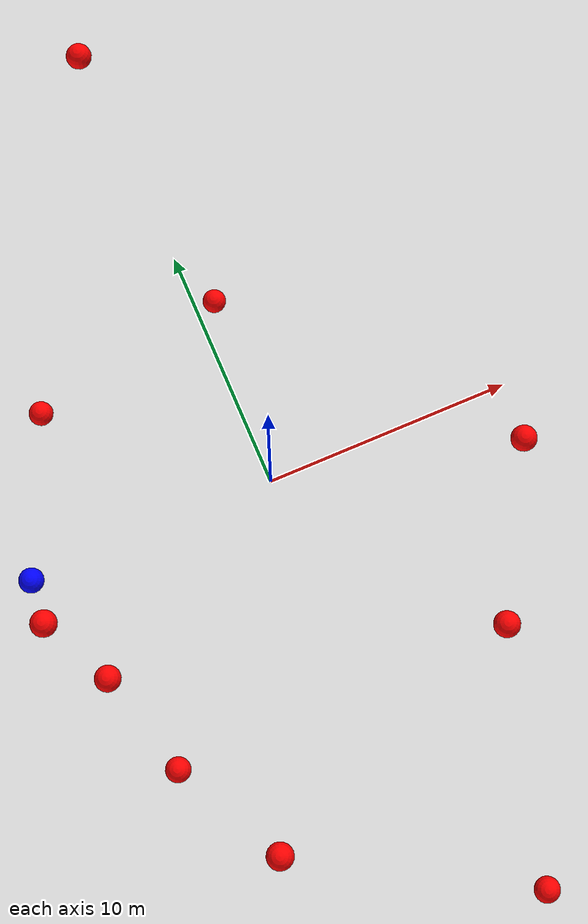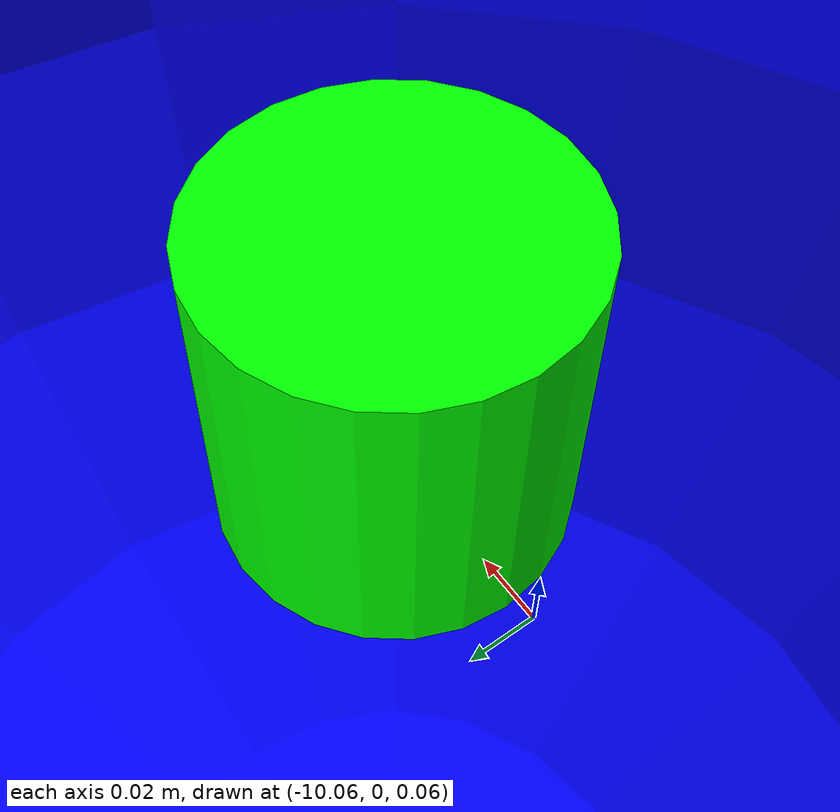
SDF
<?xml version="1.0" ?>
<sdf version="1.8">
    <world name="3d_world">
        <physics name="1ms" type="ode">
            <max_step_size>0.001</max_step_size>
            <real_time_factor>1.0</real_time_factor>
            <real_time_update_rate>1000.0</real_time_update_rate>
        </physics>
        <gravity>0 0 0</gravity>

        <plugin
            filename="gz-sim-physics-system"
            name="gz::sim::v8::systems::Physics">
        </plugin>
        <plugin
            filename="libignition-gazebo-user-commands-system.so"
            name="ignition::gazebo::systems::UserCommands">
        </plugin>
        <plugin
            filename="gz-sim-scene-broadcaster-system"
            name="gz::sim::systems::SceneBroadcaster">
        </plugin>
        <plugin
            filename="gz-sim-sensors-system"
            name="gz::sim::systems::Sensors">
            <render_engine>ogre2</render_engine>
        </plugin>

        <light type="directional" name="sun">
            <cast_shadows>true</cast_shadows>
            <pose>0 0 10 0 0 0</pose>
            <diffuse>0.8 0.8 0.8 1</diffuse>
            <specular>0.2 0.2 0.2 1</specular>
            <attenuation>
                <range>1000</range>
                <constant>0.9</constant>
                <linear>0.01</linear>
                <quadratic>0.001</quadratic>
            </attenuation>
            <direction>-0.5 0.1 -0.9</direction>
        </light>

        <!-- AGENTE -->
        <model name='agente' canonical_link='chassis'>
            <pose relative_to='world'>-10.0 0 0.0 0 0 0</pose>
            <link name='chassis'>
                <pose relative_to='__model__'>0.0 0 0.0 0 0 0</pose>
                <inertial>
                    <mass>1.14395</mass>
                    <inertia>
                        <ixx>0.095329</ixx>
                        <ixy>0</ixy>
                        <ixz>0</ixz>
                        <iyy>0.381317</iyy>
                        <iyz>0</iyz>
                        <izz>0.476646</izz>
                    </inertia>
                </inertial>
                <visual name='visual'>
                    <geometry>
                        <sphere>
                            <radius>0.5</radius>
                        </sphere>
                    </geometry>
                    <material>
                        <ambient>0.0 0.0 1.0 1</ambient>
                        <diffuse>0.0 0.0 1.0 1</diffuse>
                        <specular>0.0 0.0 1.0 1</specular>
                    </material>
                </visual>
                <collision name='collision'>
                    <geometry>
                        <sphere>
                            <radius>0.5</radius>
                        </sphere>
                    </geometry>
                </collision>
                <enable_gravity>false</enable_gravity>
            </link>

            <link name='lidar_link'>
                <pose relative_to='chassis'>0.0 0 0.1 0 0 0</pose>
                <inertial>
                    <mass>0.1</mass>
                    <inertia>
                        <ixx>0.000166667</ixx>
                        <iyy>0.000166667</iyy>
                        <izz>0.000166667</izz>
                    </inertia>
                </inertial>
                <collision name='collision'>
                    <geometry>
                        <cylinder>
                            <radius>0.05</radius>
                            <length>0.1</length>
                        </cylinder>
                    </geometry>
                </collision>
                <visual name='visual'>
                    <geometry>
                        <cylinder>
                            <radius>0.05</radius>
                            <length>0.1</length>
                        </cylinder>
                    </geometry>
                    <material>
                        <ambient>0.0 1.0 0.0 1</ambient>
                        <diffuse>0.0 1.0 0.0 1</diffuse>
                        <specular>0.0 1.0 0.0 1</specular>
                    </material>
                </visual>
                <sensor name="lidar" type="gpu_lidar">
                    <topic>scan</topic>
                    <update_rate>10</update_rate>
                    <lidar>
                        <scan>
                            <horizontal>
                                <samples>5000</samples>
                                <resolution>1</resolution>
                                <min_angle>-3.14159</min_angle>
                                <max_angle>3.14159</max_angle>
                            </horizontal>
                        </scan>
                        <range>
                            <min>0.1</min>
                            <max>10.0</max>
                            <resolution>0.01</resolution>
                        </range>
                    </lidar>
                    <visualize>true</visualize>
                    <always_on>true</always_on>
                    <update_rate>10</update_rate>
                    <pose_frame>lidar</pose_frame>
                </sensor>
                <enable_gravity>false</enable_gravity>
            </link>

            <joint name="lidar_joint" type="fixed">
                <parent>chassis</parent>
                <child>lidar_link</child>
            </joint>

            <plugin
                filename="ignition-gazebo-joint-state-publisher-system"
                name="ignition::gazebo::systems::JointStatePublisher">
            </plugin>
            <plugin
                filename="ignition-gazebo-odometry-publisher-system"
                name="ignition::gazebo::systems::OdometryPublisher">
                <dimensions>3</dimensions>
            </plugin>
            <plugin
                filename="ignition-gazebo-velocity-control-system"
                name="ignition::gazebo::systems::VelocityControl">
                <initial_linear>0.0 0 0</initial_linear>
                <initial_angular>0 0 0.0</initial_angular>
            </plugin>
            <plugin
                filename="libignition-gazebo-pose-publisher-system.so"
                name="ignition::gazebo::systems::PosePublisher">
                <topic>/agente/pose</topic>
                <frame_id>agente</frame_id>
                <update_rate>30</update_rate>
            </plugin>
        </model>

        <!-- OBSTACLE 1 -->
        <model name='obstacle_1' canonical_link='obstacle'>
            <static>false</static>
            <pose relative_to='world'>-7.52 -8.80 -0.69 0 0 0</pose>
            <link name='obstacle'>
                <pose relative_to='__model__'>0.0 0 0.0 0 0 0</pose>
                <visual name='visual'>
                    <geometry>
                        <sphere>
                            <radius>0.50</radius>
                        </sphere>
                    </geometry>
                    <material>
                        <ambient>1.0 0.0 0.0 1</ambient>
                        <diffuse>1.0 0.0 0.0 1</diffuse>
                        <specular>1.0 0.0 0.0 1</specular>
                    </material>
                </visual>
                <collision name='collision'>
                    <geometry>
                        <sphere>
                            <radius>0.50</radius>
                        </sphere>
                    </geometry>
                </collision>
                <enable_gravity>false</enable_gravity>
            </link>

            <plugin
                filename="ignition-gazebo-velocity-control-system"
                name="ignition::gazebo::systems::VelocityControl">
                <initial_linear>0.59 1.90 0.15</initial_linear>
                <initial_angular>0 0 0</initial_angular>
            </plugin>

            <plugin
                filename="ignition-gazebo-odometry-publisher-system"
                name="ignition::gazebo::systems::OdometryPublisher">
                <dimensions>3</dimensions>
            </plugin>
        </model>

        <!-- OBSTACLE 2 -->
        <model name='obstacle_2' canonical_link='obstacle'>
            <static>false</static>
            <pose relative_to='world'>9.04 -2.86 3.34 0 0 0</pose>
            <link name='obstacle'>
                <pose relative_to='__model__'>0.0 0 0.0 0 0 0</pose>
                <visual name='visual'>
                    <geometry>
                        <sphere>
                            <radius>0.50</radius>
                        </sphere>
                    </geometry>
                    <material>
                        <ambient>1.0 0.0 0.0 1</ambient>
                        <diffuse>1.0 0.0 0.0 1</diffuse>
                        <specular>1.0 0.0 0.0 1</specular>
                    </material>
                </visual>
                <collision name='collision'>
                    <geometry>
                        <sphere>
                            <radius>0.50</radius>
                        </sphere>
                    </geometry>
                </collision>
                <enable_gravity>false</enable_gravity>
            </link>

            <plugin
                filename="ignition-gazebo-velocity-control-system"
                name="ignition::gazebo::systems::VelocityControl">
                <initial_linear>-0.30 0.42 -0.49</initial_linear>
                <initial_angular>0 0 0</initial_angular>
            </plugin>

            <plugin
                filename="ignition-gazebo-odometry-publisher-system"
                name="ignition::gazebo::systems::OdometryPublisher">
                <dimensions>3</dimensions>
            </plugin>
        </model>

        <!-- OBSTACLE 3 -->
        <model name='obstacle_3' canonical_link='obstacle'>
            <static>false</static>
            <pose relative_to='world'>-9.74 -2.56 4.60 0 0 0</pose>
            <link name='obstacle'>
                <pose relative_to='__model__'>0.0 0 0.0 0 0 0</pose>
                <visual name='visual'>
                    <geometry>
                        <sphere>
                            <radius>0.50</radius>
                        </sphere>
                    </geometry>
                    <material>
                        <ambient>1.0 0.0 0.0 1</ambient>
                        <diffuse>1.0 0.0 0.0 1</diffuse>
                        <specular>1.0 0.0 0.0 1</specular>
                    </material>
                </visual>
                <collision name='collision'>
                    <geometry>
                        <sphere>
                            <radius>0.50</radius>
                        </sphere>
                    </geometry>
                </collision>
                <enable_gravity>false</enable_gravity>
            </link>

            <plugin
                filename="ignition-gazebo-velocity-control-system"
                name="ignition::gazebo::systems::VelocityControl">
                <initial_linear>1.79 0.44 -0.79</initial_linear>
                <initial_angular>0 0 0</initial_angular>
            </plugin>

            <plugin
                filename="ignition-gazebo-odometry-publisher-system"
                name="ignition::gazebo::systems::OdometryPublisher">
                <dimensions>3</dimensions>
            </plugin>
        </model>

        <!-- OBSTACLE 4 -->
        <model name='obstacle_4' canonical_link='obstacle'>
            <static>false</static>
            <pose relative_to='world'>3.43 -18.20 -0.34 0 0 0</pose>
            <link name='obstacle'>
                <pose relative_to='__model__'>0.0 0 0.0 0 0 0</pose>
                <visual name='visual'>
                    <geometry>
                        <sphere>
                            <radius>0.50</radius>
                        </sphere>
                    </geometry>
                    <material>
                        <ambient>1.0 0.0 0.0 1</ambient>
                        <diffuse>1.0 0.0 0.0 1</diffuse>
                        <specular>1.0 0.0 0.0 1</specular>
                    </material>
                </visual>
                <collision name='collision'>
                    <geometry>
                        <sphere>
                            <radius>0.50</radius>
                        </sphere>
                    </geometry>
                </collision>
                <enable_gravity>false</enable_gravity>
            </link>

            <plugin
                filename="ignition-gazebo-velocity-control-system"
                name="ignition::gazebo::systems::VelocityControl">
                <initial_linear>-0.04 2.00 0.04</initial_linear>
                <initial_angular>0 0 0</initial_angular>
            </plugin>

            <plugin
                filename="ignition-gazebo-odometry-publisher-system"
                name="ignition::gazebo::systems::OdometryPublisher">
                <dimensions>3</dimensions>
            </plugin>
        </model>

        <!-- OBSTACLE 5 -->
        <model name='obstacle_5' canonical_link='obstacle'>
            <static>false</static>
            <pose relative_to='world'>-7.36 6.70 -2.00 0 0 0</pose>
            <link name='obstacle'>
                <pose relative_to='__model__'>0.0 0 0.0 0 0 0</pose>
                <visual name='visual'>
                    <geometry>
                        <sphere>
                            <radius>0.50</radius>
                        </sphere>
                    </geometry>
                    <material>
                        <ambient>1.0 0.0 0.0 1</ambient>
                        <diffuse>1.0 0.0 0.0 1</diffuse>
                        <specular>1.0 0.0 0.0 1</specular>
                    </material>
                </visual>
                <collision name='collision'>
                    <geometry>
                        <sphere>
                            <radius>0.50</radius>
                        </sphere>
                    </geometry>
                </collision>
                <enable_gravity>false</enable_gravity>
            </link>

            <plugin
                filename="ignition-gazebo-velocity-control-system"
                name="ignition::gazebo::systems::VelocityControl">
                <initial_linear>1.69 -1.03 0.31</initial_linear>
                <initial_angular>0 0 0</initial_angular>
            </plugin>

            <plugin
                filename="ignition-gazebo-odometry-publisher-system"
                name="ignition::gazebo::systems::OdometryPublisher">
                <dimensions>3</dimensions>
            </plugin>
        </model>

        <!-- OBSTACLE 6 -->
        <model name='obstacle_6' canonical_link='obstacle'>
            <static>false</static>
            <pose relative_to='world'>-8.48 -5.02 2.87 0 0 0</pose>
            <link name='obstacle'>
                <pose relative_to='__model__'>0.0 0 0.0 0 0 0</pose>
                <visual name='visual'>
                    <geometry>
                        <sphere>
                            <radius>0.50</radius>
                        </sphere>
                    </geometry>
                    <material>
                        <ambient>1.0 0.0 0.0 1</ambient>
                        <diffuse>1.0 0.0 0.0 1</diffuse>
                        <specular>1.0 0.0 0.0 1</specular>
                    </material>
                </visual>
                <collision name='collision'>
                    <geometry>
                        <sphere>
                            <radius>0.50</radius>
                        </sphere>
                    </geometry>
                </collision>
                <enable_gravity>false</enable_gravity>
            </link>

            <plugin
                filename="ignition-gazebo-velocity-control-system"
                name="ignition::gazebo::systems::VelocityControl">
                <initial_linear>1.61 1.03 -0.59</initial_linear>
                <initial_angular>0 0 0</initial_angular>
            </plugin>

            <plugin
                filename="ignition-gazebo-odometry-publisher-system"
                name="ignition::gazebo::systems::OdometryPublisher">
                <dimensions>3</dimensions>
            </plugin>
        </model>

        <!-- OBSTACLE 7 -->
        <model name='obstacle_7' canonical_link='obstacle'>
            <static>false</static>
            <pose relative_to='world'>5.48 -8.92 3.67 0 0 0</pose>
            <link name='obstacle'>
                <pose relative_to='__model__'>0.0 0 0.0 0 0 0</pose>
                <visual name='visual'>
                    <geometry>
                        <sphere>
                            <radius>0.50</radius>
                        </sphere>
                    </geometry>
                    <material>
                        <ambient>1.0 0.0 0.0 1</ambient>
                        <diffuse>1.0 0.0 0.0 1</diffuse>
                        <specular>1.0 0.0 0.0 1</specular>
                    </material>
                </visual>
                <collision name='collision'>
                    <geometry>
                        <sphere>
                            <radius>0.50</radius>
                        </sphere>
                    </geometry>
                </collision>
                <enable_gravity>false</enable_gravity>
            </link>

            <plugin
                filename="ignition-gazebo-velocity-control-system"
                name="ignition::gazebo::systems::VelocityControl">
                <initial_linear>-1.44 1.29 -0.53</initial_linear>
                <initial_angular>0 0 0</initial_angular>
            </plugin>

            <plugin
                filename="ignition-gazebo-odometry-publisher-system"
                name="ignition::gazebo::systems::OdometryPublisher">
                <dimensions>3</dimensions>
            </plugin>
        </model>

        <!-- OBSTACLE 8 -->
        <model name='obstacle_8' canonical_link='obstacle'>
            <static>false</static>
            <pose relative_to='world'>-5.17 -13.17 4.00 0 0 0</pose>
            <link name='obstacle'>
                <pose relative_to='__model__'>0.0 0 0.0 0 0 0</pose>
                <visual name='visual'>
                    <geometry>
                        <sphere>
                            <radius>0.50</radius>
                        </sphere>
                    </geometry>
                    <material>
                        <ambient>1.0 0.0 0.0 1</ambient>
                        <diffuse>1.0 0.0 0.0 1</diffuse>
                        <specular>1.0 0.0 0.0 1</specular>
                    </material>
                </visual>
                <collision name='collision'>
                    <geometry>
                        <sphere>
                            <radius>0.50</radius>
                        </sphere>
                    </geometry>
                </collision>
                <enable_gravity>false</enable_gravity>
            </link>

            <plugin
                filename="ignition-gazebo-velocity-control-system"
                name="ignition::gazebo::systems::VelocityControl">
                <initial_linear>0.32 1.89 -0.57</initial_linear>
                <initial_angular>0 0 0</initial_angular>
            </plugin>

            <plugin
                filename="ignition-gazebo-odometry-publisher-system"
                name="ignition::gazebo::systems::OdometryPublisher">
                <dimensions>3</dimensions>
            </plugin>
        </model>

        <!-- OBSTACLE 9 -->
        <model name='obstacle_9' canonical_link='obstacle'>
            <static>false</static>
            <pose relative_to='world'>-0.58 17.81 3.86 0 0 0</pose>
            <link name='obstacle'>
                <pose relative_to='__model__'>0.0 0 0.0 0 0 0</pose>
                <visual name='visual'>
                    <geometry>
                        <sphere>
                            <radius>0.50</radius>
                        </sphere>
                    </geometry>
                    <material>
                        <ambient>1.0 0.0 0.0 1</ambient>
                        <diffuse>1.0 0.0 0.0 1</diffuse>
                        <specular>1.0 0.0 0.0 1</specular>
                    </material>
                </visual>
                <collision name='collision'>
                    <geometry>
                        <sphere>
                            <radius>0.50</radius>
                        </sphere>
                    </geometry>
                </collision>
                <enable_gravity>false</enable_gravity>
            </link>

            <plugin
                filename="ignition-gazebo-velocity-control-system"
                name="ignition::gazebo::systems::VelocityControl">
                <initial_linear>-0.45 -1.90 -0.41</initial_linear>
                <initial_angular>0 0 0</initial_angular>
            </plugin>

            <plugin
                filename="ignition-gazebo-odometry-publisher-system"
                name="ignition::gazebo::systems::OdometryPublisher">
                <dimensions>3</dimensions>
            </plugin>
        </model>

        <!-- OBSTACLE 10 -->
        <model name='obstacle_10' canonical_link='obstacle'>
            <static>false</static>
            <pose relative_to='world'>1.18 9.07 -3.95 0 0 0</pose>
            <link name='obstacle'>
                <pose relative_to='__model__'>0.0 0 0.0 0 0 0</pose>
                <visual name='visual'>
                    <geometry>
                        <sphere>
                            <radius>0.50</radius>
                        </sphere>
                    </geometry>
                    <material>
                        <ambient>1.0 0.0 0.0 1</ambient>
                        <diffuse>1.0 0.0 0.0 1</diffuse>
                        <specular>1.0 0.0 0.0 1</specular>
                    </material>
                </visual>
                <collision name='collision'>
                    <geometry>
                        <sphere>
                            <radius>0.50</radius>
                        </sphere>
                    </geometry>
                </collision>
                <enable_gravity>false</enable_gravity>
            </link>

            <plugin
                filename="ignition-gazebo-velocity-control-system"
                name="ignition::gazebo::systems::VelocityControl">
                <initial_linear>0.50 -1.62 0.71</initial_linear>
                <initial_angular>0 0 0</initial_angular>
            </plugin>

            <plugin
                filename="ignition-gazebo-odometry-publisher-system"
                name="ignition::gazebo::systems::OdometryPublisher">
                <dimensions>3</dimensions>
            </plugin>
        </model>

    </world>
</sdf>
